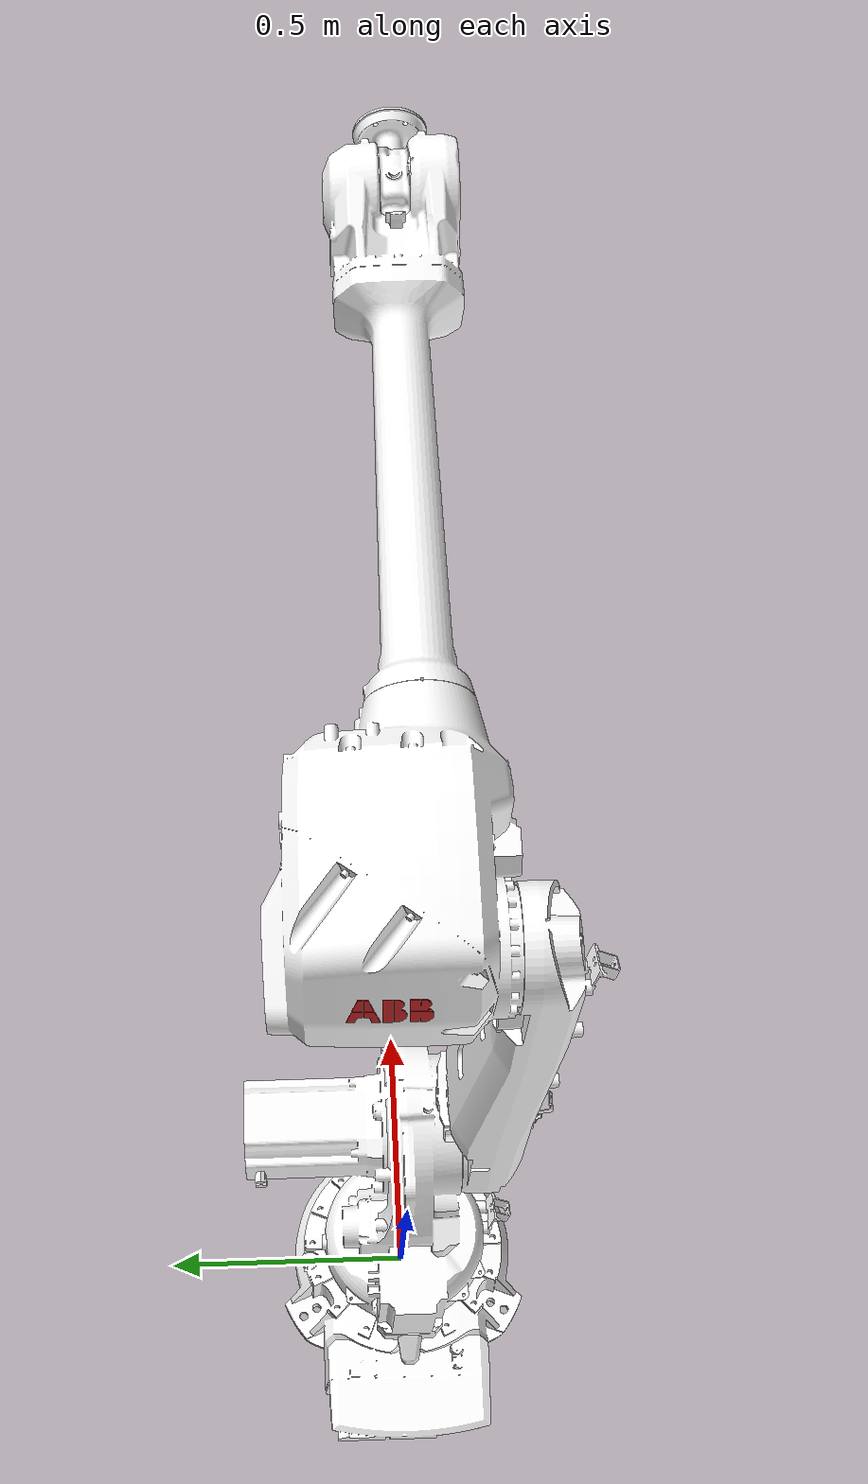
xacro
<?xml version="1.0"?>
<robot xmlns:xacro="http://www.ros.org/wiki/xacro" name="abb">

    <xacro:arg name="prefix" default=""/>
    <xacro:property name="prefix" value="$(arg prefix)"/>
    <xacro:arg name="use_fake_hardware" default="true"/>
    <xacro:property name="use_fake_hardware" value="$(arg use_fake_hardware)"/>
    <xacro:arg name="rws_ip" default="None"/>
    <xacro:property name="rws_ip" value="$(arg rws_ip)"/>
    <xacro:arg name="rws_port" default="80"/>
    <xacro:property name="rws_port" value="$(arg rws_port)"/>
    <xacro:arg name="egm_port" default="6511"/>
    <xacro:property name="egm_port" value="$(arg egm_port)"/>

    <xacro:arg name="x_trans" default="0"/>
    <xacro:property name="x_trans" value="$(arg x_trans)"/>
    <xacro:arg name="y_trans" default="0"/>
    <xacro:property name="y_trans" value="$(arg y_trans)"/>
    <xacro:arg name="z_trans" default="0"/>
    <xacro:property name="z_trans" value="$(arg z_trans)"/>
    <xacro:arg name="x_rot" default="0"/>
    <xacro:property name="x_rot" value="$(arg x_rot)"/>
    <xacro:arg name="y_rot" default="0"/>
    <xacro:property name="y_rot" value="$(arg y_rot)"/>
    <xacro:arg name="z_rot" default="0"/>
    <xacro:property name="z_rot" value="$(arg z_rot)"/>

    <!-- Robot description -->
    <xacro:include filename="$(find abb_irb_4600_resource)/urdf/irb_4600_macro.xacro" />

    <material name="white">
    <color rgba="1 1 1 1"/>
    </material>
    <link name="base_link"/>
    <xacro:irb_4600_arm prefix="${prefix}" parent_link='base_link' xyz='${x_trans} ${y_trans} ${z_trans}' rpy='${x_rot} ${y_rot} ${z_rot}'/>

    <!-- ros2_control -->
    <xacro:include filename="$(find abb_irb_4600_resource)/urdf/irb_4600.ros2_control.xacro" />
    <xacro:irb_4600_control
        name="${prefix}_ABBMultiInterfaceHardware"
        prefix="${prefix}"
        use_fake_hardware="${use_fake_hardware}"
        rws_ip="${rws_ip}"
        rws_port="${rws_port}"
        egm_port="${egm_port}"/>

</robot>

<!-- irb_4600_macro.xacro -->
<robot name="abb_irb_4600" xmlns:xacro="http://ros.org/wiki/xacro">

  <xacro:macro name="irb_4600_arm" params="prefix parent_link xyz rpy">

    <xacro:property name="l1_trans" value="${xyz}" />
    <xacro:property name="l1_rot" value="${rpy}" />
    <xacro:property name="l1_dl" value="0.0" />
    <xacro:property name="l1_ul" value="0.0" />

    <xacro:property name="l2_trans" value="0.0 0.0 0.1595" />
    <xacro:property name="l2_rot" value="0.0 0.0 0.0" />
    <xacro:property name="l2_dl" value="-165" />
    <xacro:property name="l2_ul" value="165" />

    <xacro:property name="l3_trans" value="0.175 -0.1225 0.3355" />
    <xacro:property name="l3_rot" value="-1.5707 0.0 0.0" />
    <xacro:property name="l3_dl" value="-90" />
    <xacro:property name="l3_ul" value="150" />

    <xacro:property name="l4_trans" value="0.0 -1.095 -0.0267" />
    <xacro:property name="l4_rot" value="0.0 0.0 -1.5707" />
    <xacro:property name="l4_dl" value="-180" />
    <xacro:property name="l4_ul" value="75" />

    <xacro:property name="l5_trans" value="0.175 0.3401 0.1492" />
    <xacro:property name="l5_rot" value="-1.5707 0.0 0.0" />
    <xacro:property name="l5_dl" value="-400" />
    <xacro:property name="l5_ul" value="400" />

    <xacro:property name="l6_trans" value="0.0 0.0 0.9299" />
    <xacro:property name="l6_rot" value="1.5707 0.0 0.0" />
    <xacro:property name="l6_dl" value="-125" />
    <xacro:property name="l6_ul" value="120" />

    <xacro:property name="l7_trans" value="0.0 0.135 0.0" />
    <xacro:property name="l7_rot" value="-1.5707 0.0 0.0" />
    <xacro:property name="l7_dl" value="-400" />
    <xacro:property name="l7_ul" value="400" />

    <xacro:macro name="arm_link" params="name joint_num l_trans l_rot l_dl l_ul parent joint_type mesh">
      <link name="${prefix}_${name}">
        <visual>
          <geometry>
            <mesh filename="${mesh}" scale="0.001 0.001 0.001"/>
          </geometry>
          <material name="white"/>
        </visual>
        <collision>
          <geometry>
            <mesh filename="${mesh}" scale="0.001 0.001 0.001"/>
          </geometry>
        </collision>
      </link>

      <joint name="${prefix}_joint_${joint_num}" type="${joint_type}">
        <parent link="${parent}"/>
        <child link="${prefix}_${name}"/>
        <axis xyz="0 0 1"/>
        <origin xyz="${l_trans}" rpy="${l_rot}"/>
        <xacro:if value="${joint_type == 'revolute'}">
            <limit effort="1000.0" lower="${l_dl * 3.141 / 180}" upper="${l_ul * 3.141 / 180}" velocity="1000"/>
        </xacro:if>
      </joint>
    </xacro:macro>

    <xacro:arm_link name="link_0"
                    joint_num="0"
                    l_trans='${l1_trans}'
                    l_rot='${l1_rot}'
                    l_dl='${l1_dl}' l_ul='${l1_ul}'
                    parent="${parent_link}"
                    joint_type="fixed"
                    mesh="package://abb_irb_4600_resource/meshes/Link_1.stl"/>

    <xacro:arm_link name="link_1"
                    joint_num="1"
                    l_trans='${l2_trans}'
                    l_rot='${l2_rot}'
                    l_dl='${l2_dl}' l_ul='${l2_ul}'
                    parent="${prefix}_link_0"
                    joint_type="revolute"
                    mesh="package://abb_irb_4600_resource/meshes/Link_2.stl"/>

    <xacro:arm_link name="link_2"
                    joint_num="2"
                    l_trans='${l3_trans}'
                    l_rot='${l3_rot}'
                    l_dl='${l3_dl}' l_ul='${l3_ul}'
                    parent="${prefix}_link_1"
                    joint_type="revolute"
                    mesh="package://abb_irb_4600_resource/meshes/Link_3.stl"/>

    <xacro:arm_link name="link_3"
                    joint_num="3"
                    l_trans='${l4_trans}'
                    l_rot='${l4_rot}'
                    l_dl='${l4_dl}' l_ul='${l4_ul}'
                    parent="${prefix}_link_2"
                    joint_type="revolute"
                    mesh="package://abb_irb_4600_resource/meshes/Link_4.stl"/>

    <xacro:arm_link name="link_4"
                    joint_num="4"
                    l_trans='${l5_trans}'
                    l_rot='${l5_rot}'
                    l_dl='${l5_dl}' l_ul='${l5_ul}'
                    parent="${prefix}_link_3"
                    joint_type="revolute"
                    mesh="package://abb_irb_4600_resource/meshes/Link_5.stl"/>

    <xacro:arm_link name="link_5"
                    joint_num="5"
                    l_trans='${l6_trans}'
                    l_rot='${l6_rot}'
                    l_dl='${l6_dl}' l_ul='${l6_ul}'
                    parent="${prefix}_link_4"
                    joint_type="revolute"
                    mesh="package://abb_irb_4600_resource/meshes/Link_6.stl"/>

    <xacro:arm_link name="link_6"
                    joint_num="6"
                    l_trans='${l7_trans}'
                    l_rot='${l7_rot}'
                    l_dl='${l7_dl}' l_ul='${l7_ul}'
                    parent="${prefix}_link_5"
                    joint_type="revolute"
                    mesh="package://abb_irb_4600_resource/meshes/Link_7.stl"/>

    <link name="${prefix}_abb_name">
      <visual>
        <geometry>
          <mesh filename="package://abb_irb_4600_resource/meshes/abb_name.stl" scale="0.001 0.001 0.001"/>
        </geometry>
        <material name="red"/>
      </visual>
      <collision>
        <geometry>
          <mesh filename="package://abb_irb_4600_resource/meshes/abb_name.stl" scale="0.001 0.001 0.001"/>
        </geometry>
      </collision>
    </link>

    <joint name="${prefix}_abb_name_joint" type="fixed">
      <parent link="${prefix}_link_3"/>
      <child link="${prefix}_abb_name"/>
      <origin xyz="0 0 0" rpy="0 0 0"/>
    </joint>

  </xacro:macro>

</robot>
